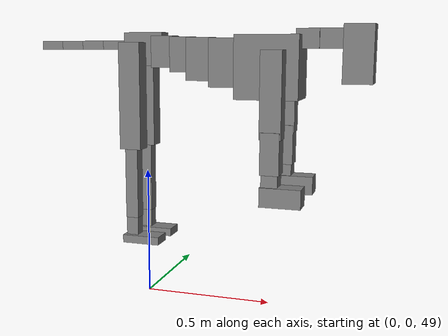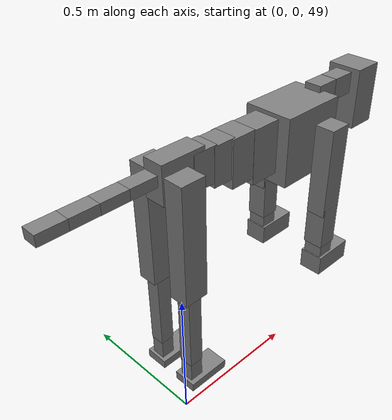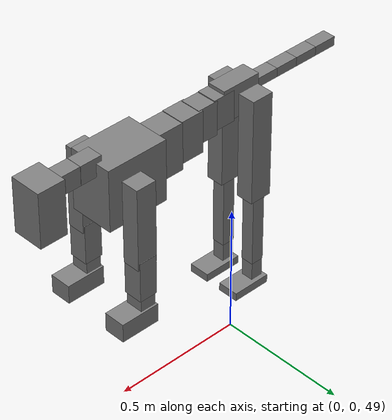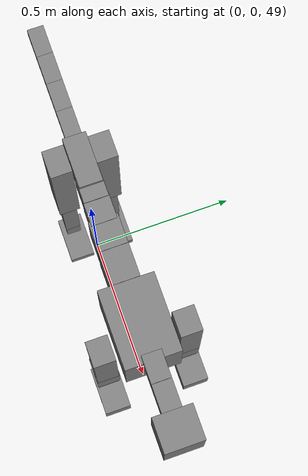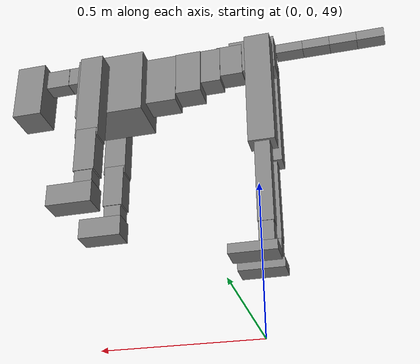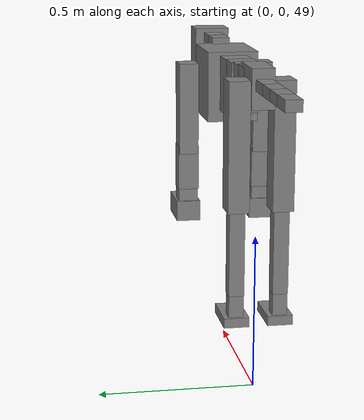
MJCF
<mujoco model="dog">

    <default>
        <joint armature="0.02" stiffness="1" damping="0.2" limited="true"/>
        <geom condim="3" friction="1 0.05 0.05" margin="0.01"/>
        <motor ctrllimited="true" ctrlrange="-1.0 1.0" forcelimited="true" gear="50"/>
    </default>

    <compiler inertiafromgeom="true" angle="radian"/>

    <option timestep="0.016" iterations="50" tolerance="1e-10" solver="Newton" jacobian="dense" cone="pyramidal"/>

    <size nconmax="20000" njmax="60000" nstack="5000000"/>
    <visual>
        <map force="0.1" zfar="30"/>
        <rgba haze="0.15 0.25 0.35 1"/>
        <quality shadowsize="2048"/>
        <global offwidth="800" offheight="800"/>
    </visual>

    <asset>
        <texture type="skybox" builtin="gradient" rgb1="0.3 0.5 0.7" rgb2="0 0 0" width="512" height="512"/>
        <texture name="texplane" type="2d" builtin="checker" rgb1=".2 .3 .4" rgb2=".1 0.15 0.2" width="512" height="512"
                 mark="cross" markrgb=".8 .8 .8"/>
        <texture name="texgeom" type="cube" builtin="flat" mark="cross" width="127" height="1278" rgb1="0.8 0.6 0.4"
                 rgb2="0.8 0.6 0.4" markrgb="1 1 1" random="0.01"/>

        <material name="matplane" reflectance="0.3" texture="texplane" texrepeat="1 1" texuniform="true"/>
        <material name="matgeom" texture="texgeom" texuniform="true" rgba="0.8 0.6 .4 1"/>
    </asset>

    <worldbody>
        <geom name="floor" pos="0 0 0" size="0 0 .25" type="plane" material="matplane" condim="3"/>

        <light directional="false" diffuse=".2 .2 .2" specular="0 0 0" pos="0 0 5" dir="0 0 -1" castshadow="false"/>
        <light mode="targetbodycom" target="torso" directional="false" diffuse=".8 .8 .8" specular="0.3 0.3 0.3"
               pos="0 0 4.0" dir="0 0 -1"/>

        <body name="root" pos="0 0 50">
            <freejoint name="root_1"/>
            <geom type="box" pos="0 0 -0.02" size="0.0774  0.0358  0.063" density="2030"/>

            <body name="spine1" pos="0.054 0 0">
                <joint name="spine1_y" axis="0 1 0" range="0 0.7" limited="true"/>
                <geom type="box" pos="0.02375 0 -0.03" size="0.04375  0.0375  0.05985" density="2030"/>

                <body name="spine2" pos="0.0612 0 0">
                    <joint name="spine2_y" axis="0 1 0" range="-0.15 0.15" limited="true"/>
                    <geom type="box" pos="0.03555  0  -0.04" size="0.04055  0.039  0.06615" density="2030"/>

                    <body name="spine3" pos="0.0730 0 0">
                        <joint name="spine3_y" axis="0 1 0" range="-0.15 0.15" limited="true"/>
                        <geom type="box" pos="0.03555  0  -0.057" size="0.04555  0.0445  0.081" density="2030"/>

                        <body name="spine4" pos="0.0780 0 0">
                            <joint name="spine4_y" axis="0 1 0" range="-0.15 0.15" limited="true"/>
                            <geom type="box" pos="0.05265  0  -0.07" size="0.05265  0.045  0.09135" density="2030"/>

                            <body name="torso" pos="0.1082 0 0">
                                <joint name="torso_y" axis="0 1 0" range="-0.15 0.15" limited="true"/>
                                <geom type="box" pos="0.11925  0  -0.085" size="0.11925  0.085  0.11745"
                                      density="2030"/>

                                <body name="neck1" pos="0.2160  0   0.0180">
                                    <joint name="neck1_y" axis="0 1 0" range="-1.2  -1" limited="true"/>
                                    <geom type="box" pos="0.0423  0  0" size="0.0423  0.03  0.036" density="2325"/>

                                    <body name="neck2" pos="0.0853  0  0">
                                        <joint name="neck2_y" axis="0 1 0" range="0.1  0" limited="true"/>
                                        <geom type="box" pos="0.0423  0  0" size="0.0423  0.03  0.036" density="2325"/>

                                        <body name="head" pos="0.0853  0  0">
                                            <joint name="head_y" axis="0 1 0" range="-0.3  -0.2" limited="true"/>
                                            <geom type="box" pos="0.0531  0  -0.055" size="0.0531  0.06  0.1044"
                                                  density="4030"/>

                                        </body>
                                    </body>
                                </body>

                                <body name="front_shoulder" pos="0.156  0   -0.0480">
                                    <joint name="front_shoulder_y" axis="0 1 0" range="-1 1.5" limited="true"/>
                                    <geom type="box" pos="0 0.13 -0.1308" size="0.0391  0.0334  0.1574" density="1158"/>
                                    <geom type="box" pos="0 -0.13 -0.1308" size="0.0391  0.0334  0.1574"
                                          density="1158"/>

                                    <body name="front_elbow" pos="0  0  -0.2615">
                                        <joint name="front_elbow_y" axis="0 1 0" range="-2 0" limited="true"/>
                                        <geom type="box" pos="0 0.13 -0.0764" size="0.0349  0.0357  0.0764"
                                              density="1081"/>
                                        <geom type="box" pos="0 -0.13 -0.0764" size="0.0349  0.0357  0.0764"
                                              density="1081"/>

                                        <body name="front_wrist" pos="0  0  -0.1527">
                                            <joint name="front_wrist_y" axis="0 1 0" range="-0.2 0" limited="true"/>
                                            <geom type="box" pos="0 0.13 -0.0295" size="0.0301  0.0334  0.0426"
                                                  density="1664"/>
                                            <geom type="box" pos="0 -0.13 -0.0295" size="0.0301  0.0334  0.0426"
                                                  density="1664"/>

                                            <body name="front_finger_end" pos="0  0  -0.0589">
                                                <joint name="front_finger_y" axis="0 1 0" range="-0.4 1"
                                                       limited="true"/>
                                                <geom type="box" pos="0.0410  0.13  -0.0205"
                                                      size="0.0753  0.0410  0.0355" density="1515"/>
                                                <geom type="box" pos="0.0410  -0.13  -0.0205"
                                                      size="0.0753  0.0410  0.0355" density="1515"/>

                                            </body>

                                        </body>
                                    </body>
                                </body>

                            </body>
                        </body>
                    </body>
                </body>
            </body>

            <body name="back_hip" pos="-0.03 0 -0.018">
                <joint name="back_hip_y" axis="0 1 0" range="-1.5 0.3" limited="true"/>
                <geom type="box" pos="0 0.07 -0.1809" size="0.0426  0.0334  0.2037" density="1154"/>
                <geom type="box" pos="0 -0.07 -0.1809" size="0.0426  0.0334  0.2037" density="1154"/>

                <body name="back_knee" pos="0  0  -0.3619">
                    <joint name="back_knee_y" axis="0 1 0" range="0 2.8" limited="true"/>
                    <geom type="box" pos="0 0.07 -0.1393" size="0.0248  0.0245  0.1549" density="1227"/>
                    <geom type="box" pos="0 -0.07 -0.1393" size="0.0248  0.0245  0.1549" density="1227"/>

                    <body name="back_ankle" pos="0  0  -0.2786">
                        <joint name="back_ankle_y" axis="0 1 0" range="-2.2 0" limited="true"/>
                        <geom type="box" pos="0 0.07 -0.0499" size="0.0233  0.0233  0.0612" density="1284"/>
                        <geom type="box" pos="0 -0.07 -0.0499" size="0.0233  0.0233  0.0612" density="1284"/>

                        <body name="back_toe_end" pos="0  0  -0.0998">
                            <joint name="back_toe_y" axis="0 1 0" range="-0.4 1" limited="true"/>
                            <geom type="box" pos="0.0403  0.07  -0.0005" size="0.0739  0.0403  0.0155" density="1515"/>
                            <geom type="box" pos="0.0403  -0.07  -0.0005" size="0.0739  0.0403  0.0155" density="1515"/>

                        </body>
                    </body>
                </body>
            </body>

            <body name="tail1" pos="-0.074 0 -0.006">
                <joint name="tail1_y" axis="0 1 0" range="-0.2 0.2" limited="true"/>
                <geom type="box" pos="-0.0536  0  0" size="0.045  0.025  0.0175" density="1587"/>

                <body name="tail2" pos="-0.09 0 0">
                    <joint name="tail2_y" axis="0 1 0" range="-0.2 0.2" limited="true"/>
                    <geom type="box" pos="-0.0536  0  0" size="0.045  0.025  0.0175" density="1587"/>

                    <body name="tail3" pos="-0.09 0 0">
                        <joint name="tail3_y" axis="0 1 0" range="-0.2 0.2" limited="true"/>
                        <geom type="box" pos="-0.0536  0  0" size="0.045  0.025  0.0175" density="1587"/>

                        <body name="tail4" pos="-0.09 0 0">
                            <joint name="tail4_y" axis="0 1 0" range="-0.2 0.2" limited="true"/>
                            <geom type="box" pos="-0.0536  0  0" size="0.045  0.025  0.0175" density="1587"/>

                        </body>
                    </body>
                </body>
            </body>
        </body>
    </worldbody>

    <actuator>
        <motor joint="spine1_y" forcerange="-150 150     "/>
        <motor joint="spine2_y" forcerange="-150 150     "/>
        <motor joint="spine3_y" forcerange="-150 150     "/>
        <motor joint="spine4_y" forcerange="-150 150     "/>
        <motor joint="torso_y" forcerange="-150 150     "/>
        <motor joint="neck1_y" forcerange="-100 100       "/>
        <motor joint="neck2_y" forcerange="-100 100       "/>
        <motor joint="head_y" forcerange="-150 150       "/>
        <motor joint="front_shoulder_y" forcerange="-134.24 188.41"/>
        <motor joint="front_elbow_y" forcerange="-174.47 184.84"/>
        <motor joint="front_wrist_y" forcerange="-127.56 140.01"/>
        <motor joint="front_finger_y" forcerange="-98.50 80.42"/>
        <motor joint="back_hip_y" forcerange="-293.76 351.46"/>
        <motor joint="back_knee_y" forcerange="-339.52 216.65"/>
        <motor joint="back_angle_y" forcerange="-104.89 167.76"/>
        <motor joint="back_toe_y" forcerange="-115.73 126.66"/>
        <motor joint="tail1_y" forcerange="-50 50     "/>
        <motor joint="tail2_y" forcerange="-50 50     "/>
        <motor joint="tail3_y" forcerange="-50 50     "/>
        <motor joint="tail4_y" forcerange="-50 50     "/>
    </actuator>
</mujoco>
